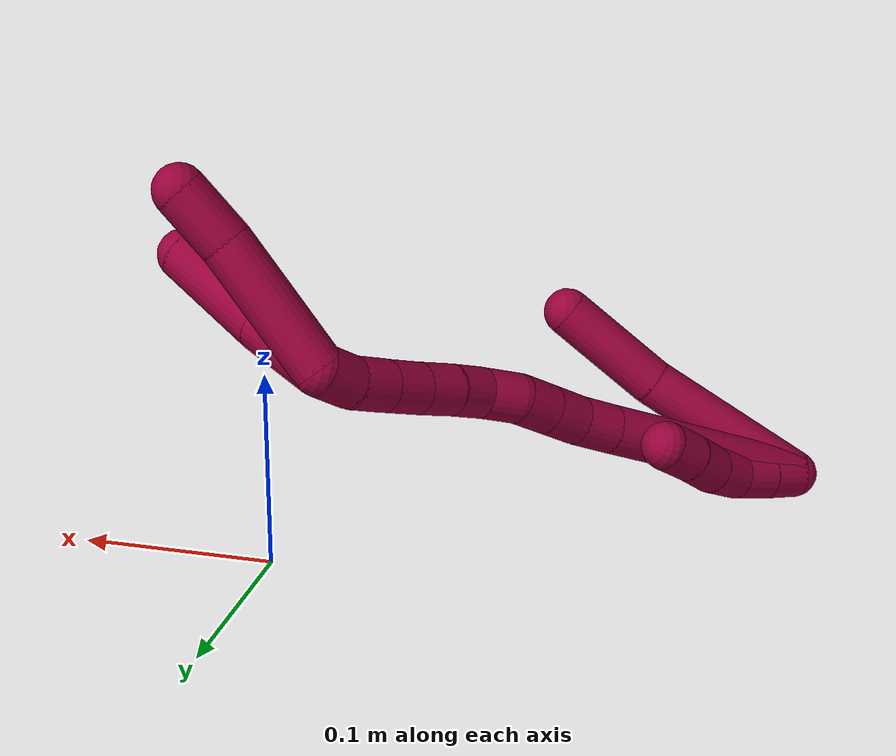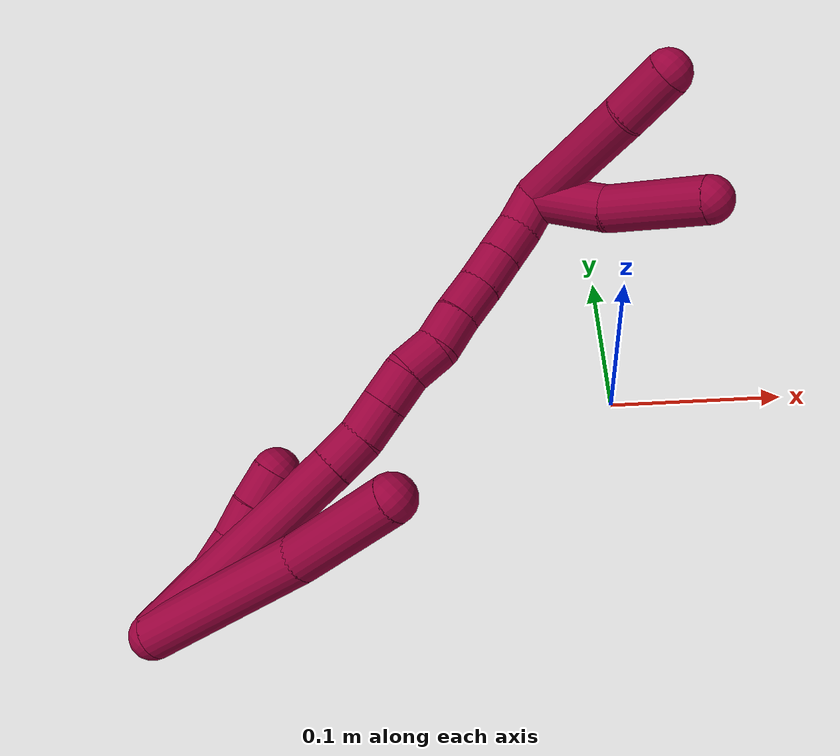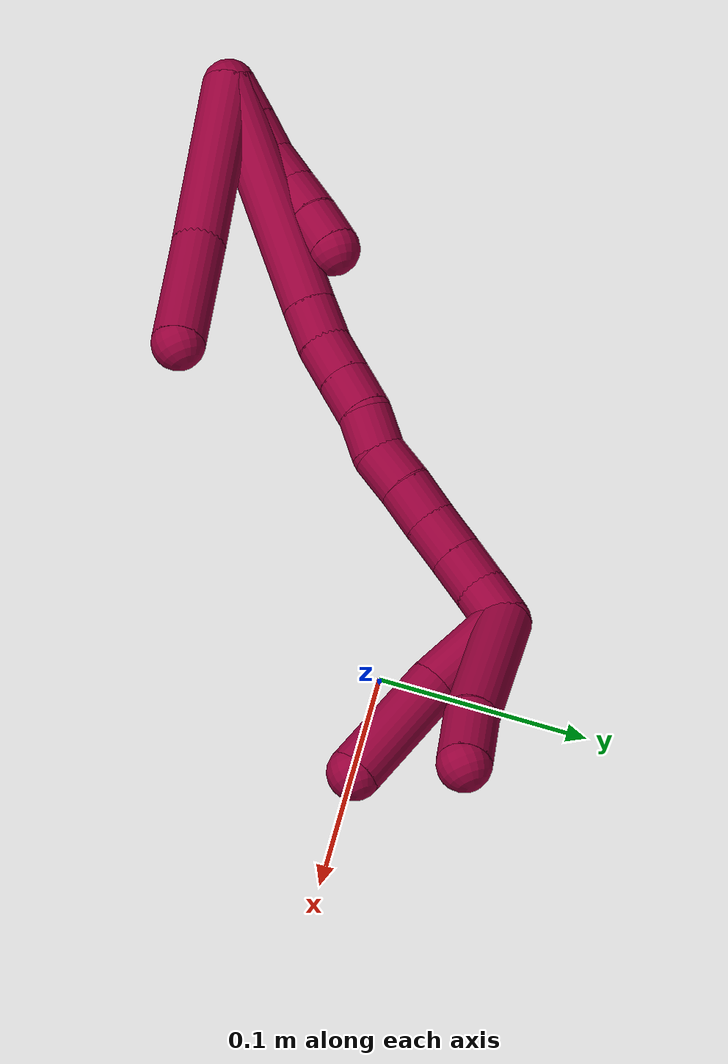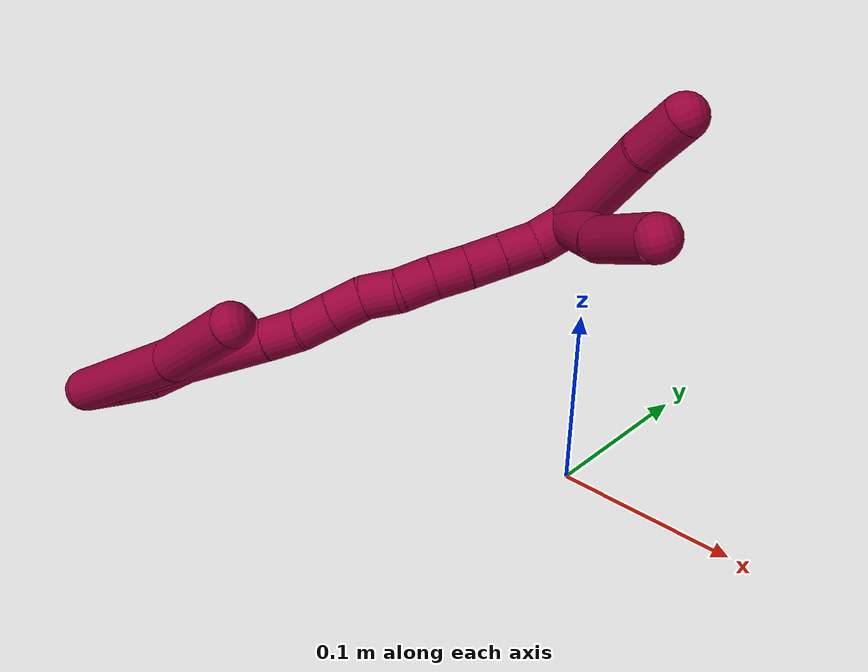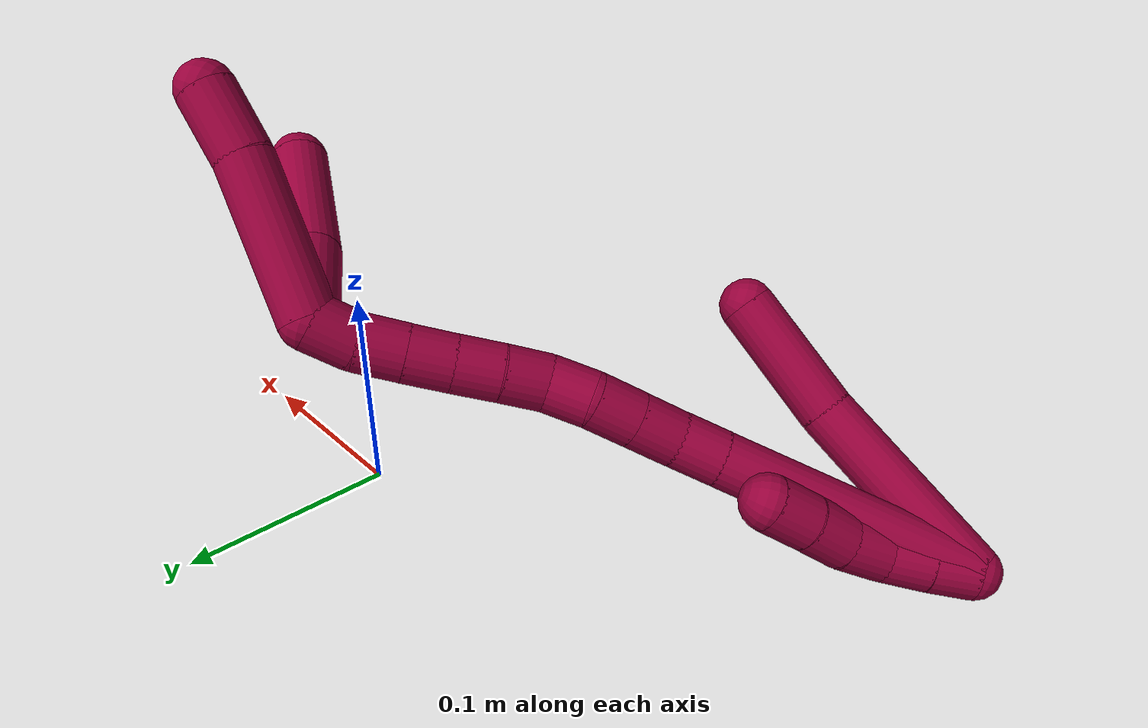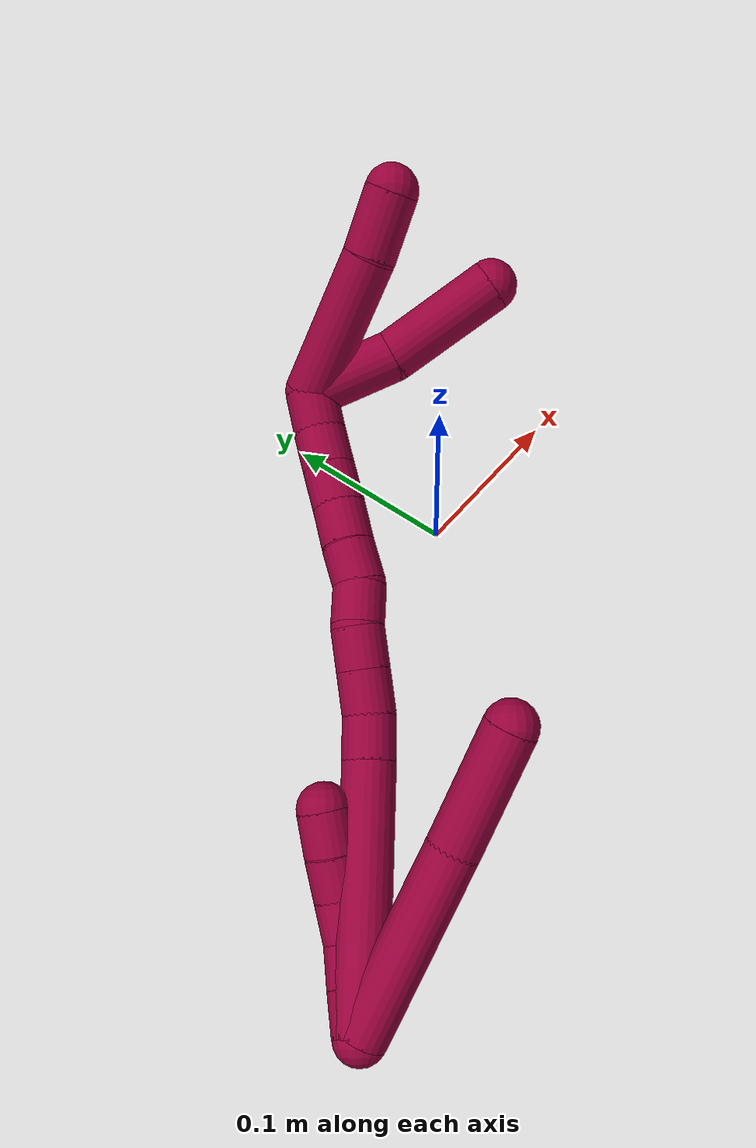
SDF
<sdf version="1.7">
 <world name="default">
  <model name="8">
   <static>0</static>
   <link name="8">
    <collision name="collision-cylinder-e_1_2_8">
     <pose>0.023376 -0.006168 -0.038564 2.983 0.539348 2.58172</pose>
     <geometry><cylinder><radius>0.0125</radius><length>0.091031</length></cylinder></geometry>
     <surface>
      <friction><ode><mu>1.16</mu><mu2>1.16</mu2><slip1>0</slip1><slip2>0</slip2></ode></friction>
      <contact><ode><kp>1e+06</kp><kd>1</kd><max_vel>0</max_vel><min_depth>0.001</min_depth></ode></contact>
     </surface>
    </collision>
    <visual name="visual-cylinder-e_1_2_8">
     <pose>0.023376 -0.006168 -0.038564 2.983 0.539348 2.58172</pose>
     <geometry><cylinder><radius>0.0125</radius><length>0.091031</length></cylinder></geometry>
     <material><ambient>0.584314 0 0.227451 1</ambient></material>
    </visual>
    <collision name="collision-cylinder-e_2_8_6">
     <pose>0.06363 -0.013408 -0.10128 3.09721 0.609488 3.0007</pose>
     <geometry><cylinder><radius>0.0125</radius><length>0.058969</length></cylinder></geometry>
     <surface>
      <friction><ode><mu>1.16</mu><mu2>1.16</mu2><slip1>0</slip1><slip2>0</slip2></ode></friction>
      <contact><ode><kp>1e+06</kp><kd>1</kd><max_vel>0</max_vel><min_depth>0.001</min_depth></ode></contact>
     </surface>
    </collision>
    <visual name="visual-cylinder-e_2_8_6">
     <pose>0.06363 -0.013408 -0.10128 3.09721 0.609488 3.0007</pose>
     <geometry><cylinder><radius>0.0125</radius><length>0.058969</length></cylinder></geometry>
     <material><ambient>0.584314 0 0.227451 1</ambient></material>
    </visual>
    <collision name="collision-cylinder-e_1_2_9">
     <pose>-0.001749 -0.000199 -0.009844 3.12133 -0.175809 -2.91269</pose>
     <geometry><cylinder><radius>0.0125</radius><length>0.02</length></cylinder></geometry>
     <surface>
      <friction><ode><mu>1.16</mu><mu2>1.16</mu2><slip1>0</slip1><slip2>0</slip2></ode></friction>
      <contact><ode><kp>1e+06</kp><kd>1</kd><max_vel>0</max_vel><min_depth>0.001</min_depth></ode></contact>
     </surface>
    </collision>
    <visual name="visual-cylinder-e_1_2_9">
     <pose>-0.001749 -0.000199 -0.009844 3.12133 -0.175809 -2.91269</pose>
     <geometry><cylinder><radius>0.0125</radius><length>0.02</length></cylinder></geometry>
     <material><ambient>0.584314 0 0.227451 1</ambient></material>
    </visual>
    <collision name="collision-cylinder-e_2_9_10">
     <pose>-0.004796 -0.000499 -0.029603 3.13153 -0.130124 -2.98745</pose>
     <geometry><cylinder><radius>0.0125</radius><length>0.02</length></cylinder></geometry>
     <surface>
      <friction><ode><mu>1.16</mu><mu2>1.16</mu2><slip1>0</slip1><slip2>0</slip2></ode></friction>
      <contact><ode><kp>1e+06</kp><kd>1</kd><max_vel>0</max_vel><min_depth>0.001</min_depth></ode></contact>
     </surface>
    </collision>
    <visual name="visual-cylinder-e_2_9_10">
     <pose>-0.004796 -0.000499 -0.029603 3.13153 -0.130124 -2.98745</pose>
     <geometry><cylinder><radius>0.0125</radius><length>0.02</length></cylinder></geometry>
     <material><ambient>0.584314 0 0.227451 1</ambient></material>
    </visual>
    <collision name="collision-cylinder-e_3_10_11">
     <pose>-0.006812 0.001653 -0.049234 -2.91385 -0.071889 0.609277</pose>
     <geometry><cylinder><radius>0.0125</radius><length>0.02</length></cylinder></geometry>
     <surface>
      <friction><ode><mu>1.16</mu><mu2>1.16</mu2><slip1>0</slip1><slip2>0</slip2></ode></friction>
      <contact><ode><kp>1e+06</kp><kd>1</kd><max_vel>0</max_vel><min_depth>0.001</min_depth></ode></contact>
     </surface>
    </collision>
    <visual name="visual-cylinder-e_3_10_11">
     <pose>-0.006812 0.001653 -0.049234 -2.91385 -0.071889 0.609277</pose>
     <geometry><cylinder><radius>0.0125</radius><length>0.02</length></cylinder></geometry>
     <material><ambient>0.584314 0 0.227451 1</ambient></material>
    </visual>
    <collision name="collision-cylinder-e_4_11_12">
     <pose>-0.006835 0.007261 -0.068345 -2.79854 0.069497 -0.396094</pose>
     <geometry><cylinder><radius>0.0125</radius><length>0.02</length></cylinder></geometry>
     <surface>
      <friction><ode><mu>1.16</mu><mu2>1.16</mu2><slip1>0</slip1><slip2>0</slip2></ode></friction>
      <contact><ode><kp>1e+06</kp><kd>1</kd><max_vel>0</max_vel><min_depth>0.001</min_depth></ode></contact>
     </surface>
    </collision>
    <visual name="visual-cylinder-e_4_11_12">
     <pose>-0.006835 0.007261 -0.068345 -2.79854 0.069497 -0.396094</pose>
     <geometry><cylinder><radius>0.0125</radius><length>0.02</length></cylinder></geometry>
     <material><ambient>0.584314 0 0.227451 1</ambient></material>
    </visual>
    <collision name="collision-cylinder-e_5_12_5">
     <pose>-0.00558 0.013358 -0.08734 -2.86343 0.056135 -0.395862</pose>
     <geometry><cylinder><radius>0.0125</radius><length>0.02</length></cylinder></geometry>
     <surface>
      <friction><ode><mu>1.16</mu><mu2>1.16</mu2><slip1>0</slip1><slip2>0</slip2></ode></friction>
      <contact><ode><kp>1e+06</kp><kd>1</kd><max_vel>0</max_vel><min_depth>0.001</min_depth></ode></contact>
     </surface>
    </collision>
    <visual name="visual-cylinder-e_5_12_5">
     <pose>-0.00558 0.013358 -0.08734 -2.86343 0.056135 -0.395862</pose>
     <geometry><cylinder><radius>0.0125</radius><length>0.02</length></cylinder></geometry>
     <material><ambient>0.584314 0 0.227451 1</ambient></material>
    </visual>
    <collision name="collision-cylinder-e_1_2_13">
     <pose>0.003856 0.000129 -0.059102 -3.1394 0.06515 -3.07439</pose>
     <geometry><cylinder><radius>0.0125</radius><length>0.118456</length></cylinder></geometry>
     <surface>
      <friction><ode><mu>1.16</mu><mu2>1.16</mu2><slip1>0</slip1><slip2>0</slip2></ode></friction>
      <contact><ode><kp>1e+06</kp><kd>1</kd><max_vel>0</max_vel><min_depth>0.001</min_depth></ode></contact>
     </surface>
    </collision>
    <visual name="visual-cylinder-e_1_2_13">
     <pose>0.003856 0.000129 -0.059102 -3.1394 0.06515 -3.07439</pose>
     <geometry><cylinder><radius>0.0125</radius><length>0.118456</length></cylinder></geometry>
     <material><ambient>0.584314 0 0.227451 1</ambient></material>
    </visual>
    <collision name="collision-cylinder-e_2_13_14">
     <pose>0.008354 0.000618 -0.128558 -3.10689 0.061905 -2.11992</pose>
     <geometry><cylinder><radius>0.0125</radius><length>0.020759</length></cylinder></geometry>
     <surface>
      <friction><ode><mu>1.16</mu><mu2>1.16</mu2><slip1>0</slip1><slip2>0</slip2></ode></friction>
      <contact><ode><kp>1e+06</kp><kd>1</kd><max_vel>0</max_vel><min_depth>0.001</min_depth></ode></contact>
     </surface>
    </collision>
    <visual name="visual-cylinder-e_2_13_14">
     <pose>0.008354 0.000618 -0.128558 -3.10689 0.061905 -2.11992</pose>
     <geometry><cylinder><radius>0.0125</radius><length>0.020759</length></cylinder></geometry>
     <material><ambient>0.584314 0 0.227451 1</ambient></material>
    </visual>
    <collision name="collision-cylinder-e_3_14_15">
     <pose>0.009457 0.00309 -0.149056 -2.93636 0.044477 -0.425453</pose>
     <geometry><cylinder><radius>0.0125</radius><length>0.020745</length></cylinder></geometry>
     <surface>
      <friction><ode><mu>1.16</mu><mu2>1.16</mu2><slip1>0</slip1><slip2>0</slip2></ode></friction>
      <contact><ode><kp>1e+06</kp><kd>1</kd><max_vel>0</max_vel><min_depth>0.001</min_depth></ode></contact>
     </surface>
    </collision>
    <visual name="visual-cylinder-e_3_14_15">
     <pose>0.009457 0.00309 -0.149056 -2.93636 0.044477 -0.425453</pose>
     <geometry><cylinder><radius>0.0125</radius><length>0.020745</length></cylinder></geometry>
     <material><ambient>0.584314 0 0.227451 1</ambient></material>
    </visual>
    <collision name="collision-cylinder-e_4_15_16">
     <pose>0.010334 0.007238 -0.168989 -2.93647 0.041489 -0.397839</pose>
     <geometry><cylinder><radius>0.0125</radius><length>0.020012</length></cylinder></geometry>
     <surface>
      <friction><ode><mu>1.16</mu><mu2>1.16</mu2><slip1>0</slip1><slip2>0</slip2></ode></friction>
      <contact><ode><kp>1e+06</kp><kd>1</kd><max_vel>0</max_vel><min_depth>0.001</min_depth></ode></contact>
     </surface>
    </collision>
    <visual name="visual-cylinder-e_4_15_16">
     <pose>0.010334 0.007238 -0.168989 -2.93647 0.041489 -0.397839</pose>
     <geometry><cylinder><radius>0.0125</radius><length>0.020012</length></cylinder></geometry>
     <material><ambient>0.584314 0 0.227451 1</ambient></material>
    </visual>
    <collision name="collision-cylinder-e_5_16_17">
     <pose>0.010877 0.008602 -0.188755 3.0743 0.012789 0.3755</pose>
     <geometry><cylinder><radius>0.0125</radius><length>0.020002</length></cylinder></geometry>
     <surface>
      <friction><ode><mu>1.16</mu><mu2>1.16</mu2><slip1>0</slip1><slip2>0</slip2></ode></friction>
      <contact><ode><kp>1e+06</kp><kd>1</kd><max_vel>0</max_vel><min_depth>0.001</min_depth></ode></contact>
     </surface>
    </collision>
    <visual name="visual-cylinder-e_5_16_17">
     <pose>0.010877 0.008602 -0.188755 3.0743 0.012789 0.3755</pose>
     <geometry><cylinder><radius>0.0125</radius><length>0.020002</length></cylinder></geometry>
     <material><ambient>0.584314 0 0.227451 1</ambient></material>
    </visual>
    <collision name="collision-cylinder-e_6_17_18">
     <pose>0.009269 0.009879 -0.208397 -2.94255 -0.174278 1.43756</pose>
     <geometry><cylinder><radius>0.0125</radius><length>0.020022</length></cylinder></geometry>
     <surface>
      <friction><ode><mu>1.16</mu><mu2>1.16</mu2><slip1>0</slip1><slip2>0</slip2></ode></friction>
      <contact><ode><kp>1e+06</kp><kd>1</kd><max_vel>0</max_vel><min_depth>0.001</min_depth></ode></contact>
     </surface>
    </collision>
    <visual name="visual-cylinder-e_6_17_18">
     <pose>0.009269 0.009879 -0.208397 -2.94255 -0.174278 1.43756</pose>
     <geometry><cylinder><radius>0.0125</radius><length>0.020022</length></cylinder></geometry>
     <material><ambient>0.584314 0 0.227451 1</ambient></material>
    </visual>
    <collision name="collision-cylinder-e_7_18_19">
     <pose>0.005737 0.013042 -0.227824 -3.01793 -0.180533 1.94176</pose>
     <geometry><cylinder><radius>0.0125</radius><length>0.02</length></cylinder></geometry>
     <surface>
      <friction><ode><mu>1.16</mu><mu2>1.16</mu2><slip1>0</slip1><slip2>0</slip2></ode></friction>
      <contact><ode><kp>1e+06</kp><kd>1</kd><max_vel>0</max_vel><min_depth>0.001</min_depth></ode></contact>
     </surface>
    </collision>
    <visual name="visual-cylinder-e_7_18_19">
     <pose>0.005737 0.013042 -0.227824 -3.01793 -0.180533 1.94176</pose>
     <geometry><cylinder><radius>0.0125</radius><length>0.02</length></cylinder></geometry>
     <material><ambient>0.584314 0 0.227451 1</ambient></material>
    </visual>
    <collision name="collision-cylinder-e_8_19_20">
     <pose>0.002224 0.015877 -0.247305 -2.97621 -0.172553 1.61343</pose>
     <geometry><cylinder><radius>0.0125</radius><length>0.020002</length></cylinder></geometry>
     <surface>
      <friction><ode><mu>1.16</mu><mu2>1.16</mu2><slip1>0</slip1><slip2>0</slip2></ode></friction>
      <contact><ode><kp>1e+06</kp><kd>1</kd><max_vel>0</max_vel><min_depth>0.001</min_depth></ode></contact>
     </surface>
    </collision>
    <visual name="visual-cylinder-e_8_19_20">
     <pose>0.002224 0.015877 -0.247305 -2.97621 -0.172553 1.61343</pose>
     <geometry><cylinder><radius>0.0125</radius><length>0.020002</length></cylinder></geometry>
     <material><ambient>0.584314 0 0.227451 1</ambient></material>
    </visual>
    <collision name="collision-cylinder-e_9_20_21">
     <pose>-0.001065 0.019107 -0.266767 -2.97806 -0.1579 1.53558</pose>
     <geometry><cylinder><radius>0.0125</radius><length>0.02</length></cylinder></geometry>
     <surface>
      <friction><ode><mu>1.16</mu><mu2>1.16</mu2><slip1>0</slip1><slip2>0</slip2></ode></friction>
      <contact><ode><kp>1e+06</kp><kd>1</kd><max_vel>0</max_vel><min_depth>0.001</min_depth></ode></contact>
     </surface>
    </collision>
    <visual name="visual-cylinder-e_9_20_21">
     <pose>-0.001065 0.019107 -0.266767 -2.97806 -0.1579 1.53558</pose>
     <geometry><cylinder><radius>0.0125</radius><length>0.02</length></cylinder></geometry>
     <material><ambient>0.584314 0 0.227451 1</ambient></material>
    </visual>
    <collision name="collision-cylinder-e_10_21_1">
     <pose>-0.002382 0.02364 -0.286071 -2.84467 0.025529 -0.170286</pose>
     <geometry><cylinder><radius>0.0125</radius><length>0.02</length></cylinder></geometry>
     <surface>
      <friction><ode><mu>1.16</mu><mu2>1.16</mu2><slip1>0</slip1><slip2>0</slip2></ode></friction>
      <contact><ode><kp>1e+06</kp><kd>1</kd><max_vel>0</max_vel><min_depth>0.001</min_depth></ode></contact>
     </surface>
    </collision>
    <visual name="visual-cylinder-e_10_21_1">
     <pose>-0.002382 0.02364 -0.286071 -2.84467 0.025529 -0.170286</pose>
     <geometry><cylinder><radius>0.0125</radius><length>0.02</length></cylinder></geometry>
     <material><ambient>0.584314 0 0.227451 1</ambient></material>
    </visual>
    <collision name="collision-cylinder-e_1_1_22">
     <pose>0.023242 0.030265 -0.318989 -2.98449 0.820447 -2.78349</pose>
     <geometry><cylinder><radius>0.0125</radius><length>0.069366</length></cylinder></geometry>
     <surface>
      <friction><ode><mu>1.16</mu><mu2>1.16</mu2><slip1>0</slip1><slip2>0</slip2></ode></friction>
      <contact><ode><kp>1e+06</kp><kd>1</kd><max_vel>0</max_vel><min_depth>0.001</min_depth></ode></contact>
     </surface>
    </collision>
    <visual name="visual-cylinder-e_1_1_22">
     <pose>0.023242 0.030265 -0.318989 -2.98449 0.820447 -2.78349</pose>
     <geometry><cylinder><radius>0.0125</radius><length>0.069366</length></cylinder></geometry>
     <material><ambient>0.584314 0 0.227451 1</ambient></material>
    </visual>
    <collision name="collision-cylinder-e_2_22_4">
     <pose>0.058411 0.035758 -0.353982 -2.98864 0.694274 -2.72418</pose>
     <geometry><cylinder><radius>0.0125</radius><length>0.030634</length></cylinder></geometry>
     <surface>
      <friction><ode><mu>1.16</mu><mu2>1.16</mu2><slip1>0</slip1><slip2>0</slip2></ode></friction>
      <contact><ode><kp>1e+06</kp><kd>1</kd><max_vel>0</max_vel><min_depth>0.001</min_depth></ode></contact>
     </surface>
    </collision>
    <visual name="visual-cylinder-e_2_22_4">
     <pose>0.058411 0.035758 -0.353982 -2.98864 0.694274 -2.72418</pose>
     <geometry><cylinder><radius>0.0125</radius><length>0.030634</length></cylinder></geometry>
     <material><ambient>0.584314 0 0.227451 1</ambient></material>
    </visual>
    <collision name="collision-cylinder-e_1_1_23">
     <pose>0.013422 0.01404 -0.303395 2.12582 0.812231 1.31562</pose>
     <geometry><cylinder><radius>0.0125</radius><length>0.042846</length></cylinder></geometry>
     <surface>
      <friction><ode><mu>1.16</mu><mu2>1.16</mu2><slip1>0</slip1><slip2>0</slip2></ode></friction>
      <contact><ode><kp>1e+06</kp><kd>1</kd><max_vel>0</max_vel><min_depth>0.001</min_depth></ode></contact>
     </surface>
    </collision>
    <visual name="visual-cylinder-e_1_1_23">
     <pose>0.013422 0.01404 -0.303395 2.12582 0.812231 1.31562</pose>
     <geometry><cylinder><radius>0.0125</radius><length>0.042846</length></cylinder></geometry>
     <material><ambient>0.584314 0 0.227451 1</ambient></material>
    </visual>
    <collision name="collision-cylinder-e_2_23_3">
     <pose>0.050955 -0.010166 -0.325194 2.44736 0.877693 1.8283</pose>
     <geometry><cylinder><radius>0.0125</radius><length>0.057154</length></cylinder></geometry>
     <surface>
      <friction><ode><mu>1.16</mu><mu2>1.16</mu2><slip1>0</slip1><slip2>0</slip2></ode></friction>
      <contact><ode><kp>1e+06</kp><kd>1</kd><max_vel>0</max_vel><min_depth>0.001</min_depth></ode></contact>
     </surface>
    </collision>
    <visual name="visual-cylinder-e_2_23_3">
     <pose>0.050955 -0.010166 -0.325194 2.44736 0.877693 1.8283</pose>
     <geometry><cylinder><radius>0.0125</radius><length>0.057154</length></cylinder></geometry>
     <material><ambient>0.584314 0 0.227451 1</ambient></material>
    </visual>
    <collision name="collision-sphere-3">
     <pose>0.072938 -0.021848 -0.339226 0 -0 0</pose>
     <geometry><sphere><radius>0.0125</radius></sphere></geometry>
     <surface>
      <friction><ode><mu>1.16</mu><mu2>1.16</mu2><slip1>0</slip1><slip2>0</slip2></ode></friction>
      <contact><ode><kp>1e+06</kp><kd>1</kd><max_vel>0</max_vel><min_depth>0.001</min_depth></ode></contact>
     </surface>
    </collision>
    <visual name="visual-sphere-3">
     <pose>0.072938 -0.021848 -0.339226 0 -0 0</pose>
     <geometry><sphere><radius>0.0125</radius></sphere></geometry>
     <material><ambient>0.584314 0 0.227451 1</ambient></material>
    </visual>
    <collision name="collision-sphere-23">
     <pose>0.028971 0.001516 -0.311161 0 -0 0</pose>
     <geometry><sphere><radius>0.0125</radius></sphere></geometry>
     <surface>
      <friction><ode><mu>1.16</mu><mu2>1.16</mu2><slip1>0</slip1><slip2>0</slip2></ode></friction>
      <contact><ode><kp>1e+06</kp><kd>1</kd><max_vel>0</max_vel><min_depth>0.001</min_depth></ode></contact>
     </surface>
    </collision>
    <visual name="visual-sphere-23">
     <pose>0.028971 0.001516 -0.311161 0 -0 0</pose>
     <geometry><sphere><radius>0.0125</radius></sphere></geometry>
     <material><ambient>0.584314 0 0.227451 1</ambient></material>
    </visual>
    <collision name="collision-sphere-4">
     <pose>0.068211 0.037552 -0.365616 0 -0 0</pose>
     <geometry><sphere><radius>0.0125</radius></sphere></geometry>
     <surface>
      <friction><ode><mu>1.16</mu><mu2>1.16</mu2><slip1>0</slip1><slip2>0</slip2></ode></friction>
      <contact><ode><kp>1e+06</kp><kd>1</kd><max_vel>0</max_vel><min_depth>0.001</min_depth></ode></contact>
     </surface>
    </collision>
    <visual name="visual-sphere-4">
     <pose>0.068211 0.037552 -0.365616 0 -0 0</pose>
     <geometry><sphere><radius>0.0125</radius></sphere></geometry>
     <material><ambient>0.584314 0 0.227451 1</ambient></material>
    </visual>
    <collision name="collision-sphere-22">
     <pose>0.048611 0.033965 -0.342348 0 -0 0</pose>
     <geometry><sphere><radius>0.0125</radius></sphere></geometry>
     <surface>
      <friction><ode><mu>1.16</mu><mu2>1.16</mu2><slip1>0</slip1><slip2>0</slip2></ode></friction>
      <contact><ode><kp>1e+06</kp><kd>1</kd><max_vel>0</max_vel><min_depth>0.001</min_depth></ode></contact>
     </surface>
    </collision>
    <visual name="visual-sphere-22">
     <pose>0.048611 0.033965 -0.342348 0 -0 0</pose>
     <geometry><sphere><radius>0.0125</radius></sphere></geometry>
     <material><ambient>0.584314 0 0.227451 1</ambient></material>
    </visual>
    <collision name="collision-sphere-1">
     <pose>-0.002127 0.026565 -0.29563 0 -0 0</pose>
     <geometry><sphere><radius>0.0125</radius></sphere></geometry>
     <surface>
      <friction><ode><mu>1.16</mu><mu2>1.16</mu2><slip1>0</slip1><slip2>0</slip2></ode></friction>
      <contact><ode><kp>1e+06</kp><kd>1</kd><max_vel>0</max_vel><min_depth>0.001</min_depth></ode></contact>
     </surface>
    </collision>
    <visual name="visual-sphere-1">
     <pose>-0.002127 0.026565 -0.29563 0 -0 0</pose>
     <geometry><sphere><radius>0.0125</radius></sphere></geometry>
     <material><ambient>0.584314 0 0.227451 1</ambient></material>
    </visual>
    <collision name="collision-sphere-21">
     <pose>-0.002638 0.020715 -0.276511 0 -0 0</pose>
     <geometry><sphere><radius>0.0125</radius></sphere></geometry>
     <surface>
      <friction><ode><mu>1.16</mu><mu2>1.16</mu2><slip1>0</slip1><slip2>0</slip2></ode></friction>
      <contact><ode><kp>1e+06</kp><kd>1</kd><max_vel>0</max_vel><min_depth>0.001</min_depth></ode></contact>
     </surface>
    </collision>
    <visual name="visual-sphere-21">
     <pose>-0.002638 0.020715 -0.276511 0 -0 0</pose>
     <geometry><sphere><radius>0.0125</radius></sphere></geometry>
     <material><ambient>0.584314 0 0.227451 1</ambient></material>
    </visual>
    <collision name="collision-sphere-11">
     <pose>-0.00753 0.003905 -0.058951 0 -0 0</pose>
     <geometry><sphere><radius>0.0125</radius></sphere></geometry>
     <surface>
      <friction><ode><mu>1.16</mu><mu2>1.16</mu2><slip1>0</slip1><slip2>0</slip2></ode></friction>
      <contact><ode><kp>1e+06</kp><kd>1</kd><max_vel>0</max_vel><min_depth>0.001</min_depth></ode></contact>
     </surface>
    </collision>
    <visual name="visual-sphere-11">
     <pose>-0.00753 0.003905 -0.058951 0 -0 0</pose>
     <geometry><sphere><radius>0.0125</radius></sphere></geometry>
     <material><ambient>0.584314 0 0.227451 1</ambient></material>
    </visual>
    <collision name="collision-sphere-10">
     <pose>-0.006093 -0.000599 -0.039518 0 -0 0</pose>
     <geometry><sphere><radius>0.0125</radius></sphere></geometry>
     <surface>
      <friction><ode><mu>1.16</mu><mu2>1.16</mu2><slip1>0</slip1><slip2>0</slip2></ode></friction>
      <contact><ode><kp>1e+06</kp><kd>1</kd><max_vel>0</max_vel><min_depth>0.001</min_depth></ode></contact>
     </surface>
    </collision>
    <visual name="visual-sphere-10">
     <pose>-0.006093 -0.000599 -0.039518 0 -0 0</pose>
     <geometry><sphere><radius>0.0125</radius></sphere></geometry>
     <material><ambient>0.584314 0 0.227451 1</ambient></material>
    </visual>
    <collision name="collision-sphere-6">
     <pose>0.080508 -0.014481 -0.125432 0 -0 0</pose>
     <geometry><sphere><radius>0.0125</radius></sphere></geometry>
     <surface>
      <friction><ode><mu>1.16</mu><mu2>1.16</mu2><slip1>0</slip1><slip2>0</slip2></ode></friction>
      <contact><ode><kp>1e+06</kp><kd>1</kd><max_vel>0</max_vel><min_depth>0.001</min_depth></ode></contact>
     </surface>
    </collision>
    <visual name="visual-sphere-6">
     <pose>0.080508 -0.014481 -0.125432 0 -0 0</pose>
     <geometry><sphere><radius>0.0125</radius></sphere></geometry>
     <material><ambient>0.584314 0 0.227451 1</ambient></material>
    </visual>
    <collision name="collision-sphere-9">
     <pose>-0.003498 -0.000399 -0.019688 0 -0 0</pose>
     <geometry><sphere><radius>0.0125</radius></sphere></geometry>
     <surface>
      <friction><ode><mu>1.16</mu><mu2>1.16</mu2><slip1>0</slip1><slip2>0</slip2></ode></friction>
      <contact><ode><kp>1e+06</kp><kd>1</kd><max_vel>0</max_vel><min_depth>0.001</min_depth></ode></contact>
     </surface>
    </collision>
    <visual name="visual-sphere-9">
     <pose>-0.003498 -0.000399 -0.019688 0 -0 0</pose>
     <geometry><sphere><radius>0.0125</radius></sphere></geometry>
     <material><ambient>0.584314 0 0.227451 1</ambient></material>
    </visual>
    <collision name="collision-sphere-2">
     <geometry><sphere><radius>0.0125</radius></sphere></geometry>
     <surface>
      <friction><ode><mu>1.16</mu><mu2>1.16</mu2><slip1>0</slip1><slip2>0</slip2></ode></friction>
      <contact><ode><kp>1e+06</kp><kd>1</kd><max_vel>0</max_vel><min_depth>0.001</min_depth></ode></contact>
     </surface>
    </collision>
    <visual name="visual-sphere-2">
     <geometry><sphere><radius>0.0125</radius></sphere></geometry>
     <material><ambient>0.584314 0 0.227451 1</ambient></material>
    </visual>
    <collision name="collision-sphere-19">
     <pose>0.003942 0.014255 -0.237587 0 -0 0</pose>
     <geometry><sphere><radius>0.0125</radius></sphere></geometry>
     <surface>
      <friction><ode><mu>1.16</mu><mu2>1.16</mu2><slip1>0</slip1><slip2>0</slip2></ode></friction>
      <contact><ode><kp>1e+06</kp><kd>1</kd><max_vel>0</max_vel><min_depth>0.001</min_depth></ode></contact>
     </surface>
    </collision>
    <visual name="visual-sphere-19">
     <pose>0.003942 0.014255 -0.237587 0 -0 0</pose>
     <geometry><sphere><radius>0.0125</radius></sphere></geometry>
     <material><ambient>0.584314 0 0.227451 1</ambient></material>
    </visual>
    <collision name="collision-sphere-8">
     <pose>0.046751 -0.012336 -0.077128 0 -0 0</pose>
     <geometry><sphere><radius>0.0125</radius></sphere></geometry>
     <surface>
      <friction><ode><mu>1.16</mu><mu2>1.16</mu2><slip1>0</slip1><slip2>0</slip2></ode></friction>
      <contact><ode><kp>1e+06</kp><kd>1</kd><max_vel>0</max_vel><min_depth>0.001</min_depth></ode></contact>
     </surface>
    </collision>
    <visual name="visual-sphere-8">
     <pose>0.046751 -0.012336 -0.077128 0 -0 0</pose>
     <geometry><sphere><radius>0.0125</radius></sphere></geometry>
     <material><ambient>0.584314 0 0.227451 1</ambient></material>
    </visual>
    <collision name="collision-sphere-12">
     <pose>-0.006141 0.010616 -0.07774 0 -0 0</pose>
     <geometry><sphere><radius>0.0125</radius></sphere></geometry>
     <surface>
      <friction><ode><mu>1.16</mu><mu2>1.16</mu2><slip1>0</slip1><slip2>0</slip2></ode></friction>
      <contact><ode><kp>1e+06</kp><kd>1</kd><max_vel>0</max_vel><min_depth>0.001</min_depth></ode></contact>
     </surface>
    </collision>
    <visual name="visual-sphere-12">
     <pose>-0.006141 0.010616 -0.07774 0 -0 0</pose>
     <geometry><sphere><radius>0.0125</radius></sphere></geometry>
     <material><ambient>0.584314 0 0.227451 1</ambient></material>
    </visual>
    <collision name="collision-sphere-5">
     <pose>-0.005019 0.0161 -0.096941 0 -0 0</pose>
     <geometry><sphere><radius>0.0125</radius></sphere></geometry>
     <surface>
      <friction><ode><mu>1.16</mu><mu2>1.16</mu2><slip1>0</slip1><slip2>0</slip2></ode></friction>
      <contact><ode><kp>1e+06</kp><kd>1</kd><max_vel>0</max_vel><min_depth>0.001</min_depth></ode></contact>
     </surface>
    </collision>
    <visual name="visual-sphere-5">
     <pose>-0.005019 0.0161 -0.096941 0 -0 0</pose>
     <geometry><sphere><radius>0.0125</radius></sphere></geometry>
     <material><ambient>0.584314 0 0.227451 1</ambient></material>
    </visual>
    <collision name="collision-sphere-13">
     <pose>0.007712 0.000259 -0.118205 0 -0 0</pose>
     <geometry><sphere><radius>0.0125</radius></sphere></geometry>
     <surface>
      <friction><ode><mu>1.16</mu><mu2>1.16</mu2><slip1>0</slip1><slip2>0</slip2></ode></friction>
      <contact><ode><kp>1e+06</kp><kd>1</kd><max_vel>0</max_vel><min_depth>0.001</min_depth></ode></contact>
     </surface>
    </collision>
    <visual name="visual-sphere-13">
     <pose>0.007712 0.000259 -0.118205 0 -0 0</pose>
     <geometry><sphere><radius>0.0125</radius></sphere></geometry>
     <material><ambient>0.584314 0 0.227451 1</ambient></material>
    </visual>
    <collision name="collision-sphere-14">
     <pose>0.008996 0.000978 -0.138911 0 -0 0</pose>
     <geometry><sphere><radius>0.0125</radius></sphere></geometry>
     <surface>
      <friction><ode><mu>1.16</mu><mu2>1.16</mu2><slip1>0</slip1><slip2>0</slip2></ode></friction>
      <contact><ode><kp>1e+06</kp><kd>1</kd><max_vel>0</max_vel><min_depth>0.001</min_depth></ode></contact>
     </surface>
    </collision>
    <visual name="visual-sphere-14">
     <pose>0.008996 0.000978 -0.138911 0 -0 0</pose>
     <geometry><sphere><radius>0.0125</radius></sphere></geometry>
     <material><ambient>0.584314 0 0.227451 1</ambient></material>
    </visual>
    <collision name="collision-sphere-15">
     <pose>0.009919 0.005201 -0.159201 0 -0 0</pose>
     <geometry><sphere><radius>0.0125</radius></sphere></geometry>
     <surface>
      <friction><ode><mu>1.16</mu><mu2>1.16</mu2><slip1>0</slip1><slip2>0</slip2></ode></friction>
      <contact><ode><kp>1e+06</kp><kd>1</kd><max_vel>0</max_vel><min_depth>0.001</min_depth></ode></contact>
     </surface>
    </collision>
    <visual name="visual-sphere-15">
     <pose>0.009919 0.005201 -0.159201 0 -0 0</pose>
     <geometry><sphere><radius>0.0125</radius></sphere></geometry>
     <material><ambient>0.584314 0 0.227451 1</ambient></material>
    </visual>
    <collision name="collision-sphere-16">
     <pose>0.010749 0.009274 -0.178777 0 -0 0</pose>
     <geometry><sphere><radius>0.0125</radius></sphere></geometry>
     <surface>
      <friction><ode><mu>1.16</mu><mu2>1.16</mu2><slip1>0</slip1><slip2>0</slip2></ode></friction>
      <contact><ode><kp>1e+06</kp><kd>1</kd><max_vel>0</max_vel><min_depth>0.001</min_depth></ode></contact>
     </surface>
    </collision>
    <visual name="visual-sphere-16">
     <pose>0.010749 0.009274 -0.178777 0 -0 0</pose>
     <geometry><sphere><radius>0.0125</radius></sphere></geometry>
     <material><ambient>0.584314 0 0.227451 1</ambient></material>
    </visual>
    <collision name="collision-sphere-17">
     <pose>0.011004 0.007929 -0.198732 0 -0 0</pose>
     <geometry><sphere><radius>0.0125</radius></sphere></geometry>
     <surface>
      <friction><ode><mu>1.16</mu><mu2>1.16</mu2><slip1>0</slip1><slip2>0</slip2></ode></friction>
      <contact><ode><kp>1e+06</kp><kd>1</kd><max_vel>0</max_vel><min_depth>0.001</min_depth></ode></contact>
     </surface>
    </collision>
    <visual name="visual-sphere-17">
     <pose>0.011004 0.007929 -0.198732 0 -0 0</pose>
     <geometry><sphere><radius>0.0125</radius></sphere></geometry>
     <material><ambient>0.584314 0 0.227451 1</ambient></material>
    </visual>
    <collision name="collision-sphere-18">
     <pose>0.007533 0.011828 -0.218062 0 -0 0</pose>
     <geometry><sphere><radius>0.0125</radius></sphere></geometry>
     <surface>
      <friction><ode><mu>1.16</mu><mu2>1.16</mu2><slip1>0</slip1><slip2>0</slip2></ode></friction>
      <contact><ode><kp>1e+06</kp><kd>1</kd><max_vel>0</max_vel><min_depth>0.001</min_depth></ode></contact>
     </surface>
    </collision>
    <visual name="visual-sphere-18">
     <pose>0.007533 0.011828 -0.218062 0 -0 0</pose>
     <geometry><sphere><radius>0.0125</radius></sphere></geometry>
     <material><ambient>0.584314 0 0.227451 1</ambient></material>
    </visual>
    <collision name="collision-sphere-20">
     <pose>0.000507 0.017499 -0.257023 0 -0 0</pose>
     <geometry><sphere><radius>0.0125</radius></sphere></geometry>
     <surface>
      <friction><ode><mu>1.16</mu><mu2>1.16</mu2><slip1>0</slip1><slip2>0</slip2></ode></friction>
      <contact><ode><kp>1e+06</kp><kd>1</kd><max_vel>0</max_vel><min_depth>0.001</min_depth></ode></contact>
     </surface>
    </collision>
    <visual name="visual-sphere-20">
     <pose>0.000507 0.017499 -0.257023 0 -0 0</pose>
     <geometry><sphere><radius>0.0125</radius></sphere></geometry>
     <material><ambient>0.584314 0 0.227451 1</ambient></material>
    </visual>
    <inertial>
     <pose>0.018374 0.00578 -0.164771 0 -0 0</pose>
     <mass>0.75</mass>
     <inertia>
      <ixx>-0.000174</ixx>
      <ixy>0</ixy>
      <ixz>0</ixz>
      <iyy>0.000297</iyy>
      <iyz>0</iyz>
      <izz>-0.000132</izz>
     </inertia>
    </inertial>
   </link>
   <pose>-0.244839 -0.143316 0.014747 2.0182 -0.760473 -1.21291</pose>
  </model>
 </world>
</sdf>
